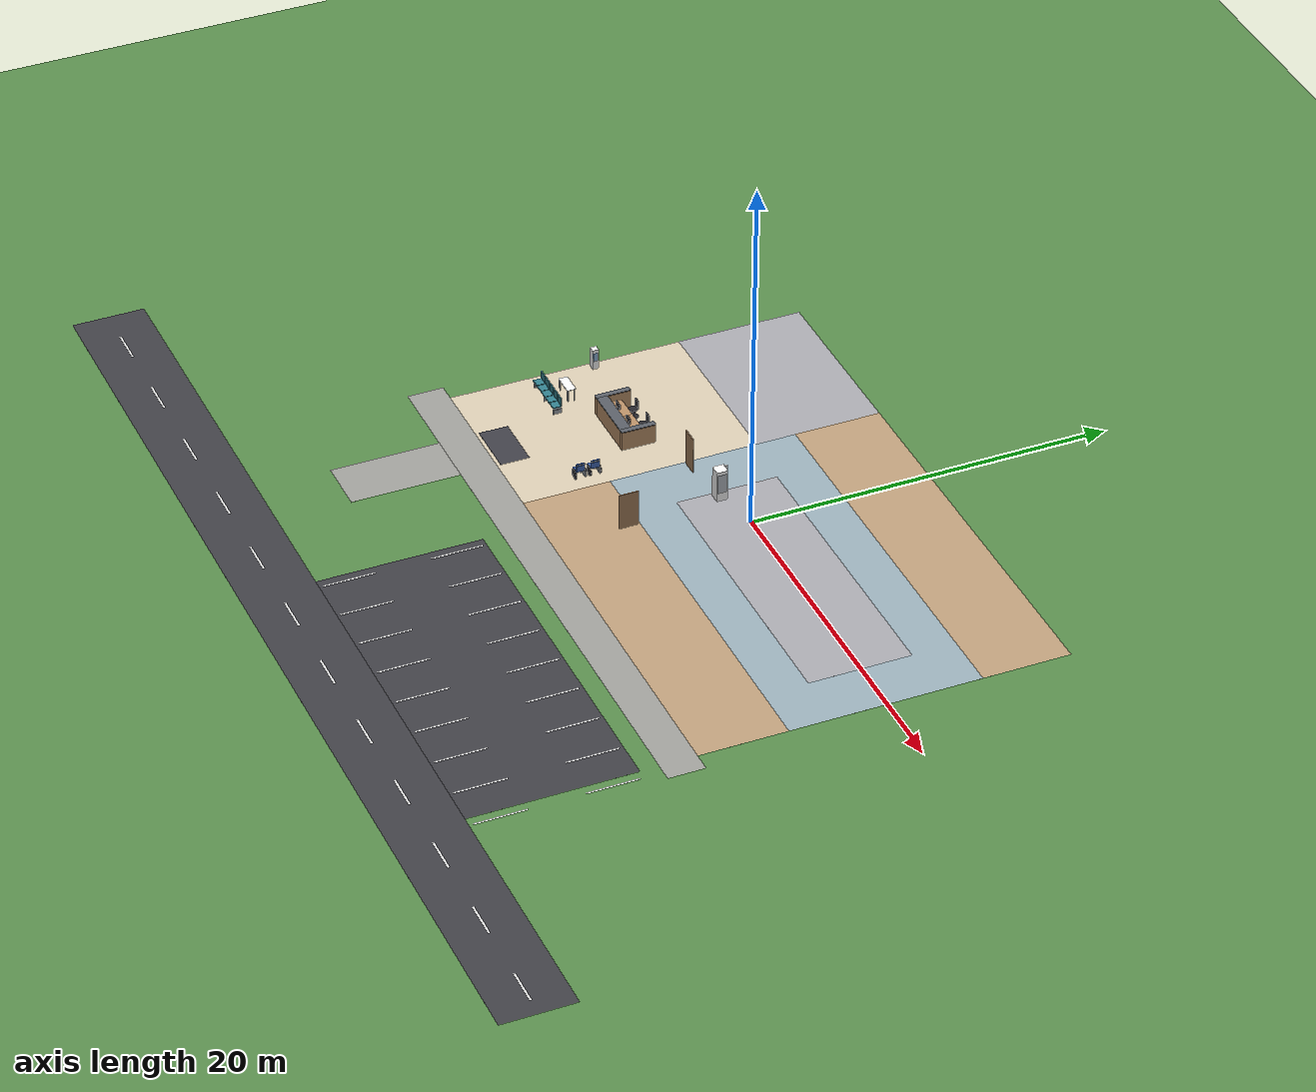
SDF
<sdf version="1.6">
 <world name="hospital">
  <include><uri>model://sun</uri></include>
  <model name="ground_plane">
   <static>true</static>
   <link name="link">
    <collision name="collision">
     <geometry><plane><normal>0 0 1</normal><size>100 100</size></plane></geometry>
     <surface>
      <contact><collide_bitmask>0xffff</collide_bitmask></contact>
      <friction><ode><mu>100</mu><mu2>50</mu2></ode></friction>
     </surface>
    </collision>
    <visual name="visual">
     <cast_shadows>false</cast_shadows>
     <geometry><plane><normal>0 0 1</normal><size>100 100</size></plane></geometry>
     <material>
      <ambient>0.35 0.55 0.3 1</ambient>
      <diffuse>0.35 0.55 0.3 1</diffuse>
      <specular>0 0 0 1</specular>
     </material>
    </visual>
   </link>
  </model>
  <model name="floor_finishes">
   <static>true</static>
   <link name="link">
    <visual name="v0">
     <pose>-11 -3.5 0.0025 0 0 0</pose>
     <geometry><box><size>10 13 0.001</size></box></geometry>
     <material>
      <ambient>0.85 0.8 0.7 1</ambient>
      <diffuse>0.85 0.8 0.7 1</diffuse>
      <specular>0.1 0.1 0.1 1</specular>
     </material>
    </visual>
    <visual name="v1">
     <pose>-11 6.5 0.0025 0 0 0</pose>
     <geometry><box><size>10 7 0.001</size></box></geometry>
     <material>
      <ambient>0.66 0.66 0.68 1</ambient>
      <diffuse>0.66 0.66 0.68 1</diffuse>
      <specular>0.1 0.1 0.1 1</specular>
     </material>
    </visual>
    <visual name="v2">
     <pose>5 0 0.0025 0 0 0</pose>
     <geometry><box><size>22 10.4 0.001</size></box></geometry>
     <material>
      <ambient>0.6 0.68 0.72 1</ambient>
      <diffuse>0.6 0.68 0.72 1</diffuse>
      <specular>0.1 0.1 0.1 1</specular>
     </material>
    </visual>
    <visual name="v3">
     <pose>5 7.6 0.0025 0 0 0</pose>
     <geometry><box><size>22 4.8 0.001</size></box></geometry>
     <material>
      <ambient>0.74 0.62 0.48 1</ambient>
      <diffuse>0.74 0.62 0.48 1</diffuse>
      <specular>0.1 0.1 0.1 1</specular>
     </material>
    </visual>
    <visual name="v4">
     <pose>5 -7.6 0.0025 0 0 0</pose>
     <geometry><box><size>22 4.8 0.001</size></box></geometry>
     <material>
      <ambient>0.74 0.62 0.48 1</ambient>
      <diffuse>0.74 0.62 0.48 1</diffuse>
      <specular>0.1 0.1 0.1 1</specular>
     </material>
    </visual>
    <visual name="v5">
     <pose>5 0 0.0045 0 0 0</pose>
     <geometry><box><size>16 5.6 0.001</size></box></geometry>
     <material>
      <ambient>0.66 0.66 0.68 1</ambient>
      <diffuse>0.66 0.66 0.68 1</diffuse>
      <specular>0.1 0.1 0.1 1</specular>
     </material>
    </visual>
    <visual name="v6">
     <pose>-11 -9 0.0045 0 0 0</pose>
     <geometry><box><size>3 1.6 0.001</size></box></geometry>
     <material>
      <ambient>0.25 0.25 0.28 1</ambient>
      <diffuse>0.25 0.25 0.28 1</diffuse>
      <specular>0.1 0.1 0.1 1</specular>
     </material>
    </visual>
    <visual name="v7">
     <pose>0 -11 0.0025 0 0 0</pose>
     <geometry><box><size>34 2 0.001</size></box></geometry>
     <material>
      <ambient>0.62 0.62 0.6 1</ambient>
      <diffuse>0.62 0.62 0.6 1</diffuse>
      <specular>0.1 0.1 0.1 1</specular>
     </material>
    </visual>
    <visual name="v8">
     <pose>-11 -15 0.0025 0 0 0</pose>
     <geometry><box><size>3 6 0.001</size></box></geometry>
     <material>
      <ambient>0.62 0.62 0.6 1</ambient>
      <diffuse>0.62 0.62 0.6 1</diffuse>
      <specular>0.1 0.1 0.1 1</specular>
     </material>
    </visual>
    <visual name="v9">
     <pose>6 -17.5 0.0025 0 0 0</pose>
     <geometry><box><size>20 9 0.001</size></box></geometry>
     <material>
      <ambient>0.25 0.25 0.27 1</ambient>
      <diffuse>0.25 0.25 0.27 1</diffuse>
      <specular>0.1 0.1 0.1 1</specular>
     </material>
    </visual>
    <visual name="v10">
     <pose>-3.5 -14.6 0.0045 0 0 0</pose>
     <geometry><box><size>0.1 2.8 0.001</size></box></geometry>
     <material>
      <ambient>0.95 0.95 0.95 1</ambient>
      <diffuse>0.95 0.95 0.95 1</diffuse>
      <specular>0.1 0.1 0.1 1</specular>
     </material>
    </visual>
    <visual name="v11">
     <pose>-3.5 -20.4 0.0045 0 0 0</pose>
     <geometry><box><size>0.1 2.8 0.001</size></box></geometry>
     <material>
      <ambient>0.95 0.95 0.95 1</ambient>
      <diffuse>0.95 0.95 0.95 1</diffuse>
      <specular>0.1 0.1 0.1 1</specular>
     </material>
    </visual>
    <visual name="v12">
     <pose>-1 -14.6 0.0045 0 0 0</pose>
     <geometry><box><size>0.1 2.8 0.001</size></box></geometry>
     <material>
      <ambient>0.95 0.95 0.95 1</ambient>
      <diffuse>0.95 0.95 0.95 1</diffuse>
      <specular>0.1 0.1 0.1 1</specular>
     </material>
    </visual>
    <visual name="v13">
     <pose>-1 -20.4 0.0045 0 0 0</pose>
     <geometry><box><size>0.1 2.8 0.001</size></box></geometry>
     <material>
      <ambient>0.95 0.95 0.95 1</ambient>
      <diffuse>0.95 0.95 0.95 1</diffuse>
      <specular>0.1 0.1 0.1 1</specular>
     </material>
    </visual>
    <visual name="v14">
     <pose>1.5 -14.6 0.0045 0 0 0</pose>
     <geometry><box><size>0.1 2.8 0.001</size></box></geometry>
     <material>
      <ambient>0.95 0.95 0.95 1</ambient>
      <diffuse>0.95 0.95 0.95 1</diffuse>
      <specular>0.1 0.1 0.1 1</specular>
     </material>
    </visual>
    <visual name="v15">
     <pose>1.5 -20.4 0.0045 0 0 0</pose>
     <geometry><box><size>0.1 2.8 0.001</size></box></geometry>
     <material>
      <ambient>0.95 0.95 0.95 1</ambient>
      <diffuse>0.95 0.95 0.95 1</diffuse>
      <specular>0.1 0.1 0.1 1</specular>
     </material>
    </visual>
    <visual name="v16">
     <pose>4 -14.6 0.0045 0 0 0</pose>
     <geometry><box><size>0.1 2.8 0.001</size></box></geometry>
     <material>
      <ambient>0.95 0.95 0.95 1</ambient>
      <diffuse>0.95 0.95 0.95 1</diffuse>
      <specular>0.1 0.1 0.1 1</specular>
     </material>
    </visual>
    <visual name="v17">
     <pose>4 -20.4 0.0045 0 0 0</pose>
     <geometry><box><size>0.1 2.8 0.001</size></box></geometry>
     <material>
      <ambient>0.95 0.95 0.95 1</ambient>
      <diffuse>0.95 0.95 0.95 1</diffuse>
      <specular>0.1 0.1 0.1 1</specular>
     </material>
    </visual>
    <visual name="v18">
     <pose>6.5 -14.6 0.0045 0 0 0</pose>
     <geometry><box><size>0.1 2.8 0.001</size></box></geometry>
     <material>
      <ambient>0.95 0.95 0.95 1</ambient>
      <diffuse>0.95 0.95 0.95 1</diffuse>
      <specular>0.1 0.1 0.1 1</specular>
     </material>
    </visual>
    <visual name="v19">
     <pose>6.5 -20.4 0.0045 0 0 0</pose>
     <geometry><box><size>0.1 2.8 0.001</size></box></geometry>
     <material>
      <ambient>0.95 0.95 0.95 1</ambient>
      <diffuse>0.95 0.95 0.95 1</diffuse>
      <specular>0.1 0.1 0.1 1</specular>
     </material>
    </visual>
    <visual name="v20">
     <pose>9 -14.6 0.0045 0 0 0</pose>
     <geometry><box><size>0.1 2.8 0.001</size></box></geometry>
     <material>
      <ambient>0.95 0.95 0.95 1</ambient>
      <diffuse>0.95 0.95 0.95 1</diffuse>
      <specular>0.1 0.1 0.1 1</specular>
     </material>
    </visual>
    <visual name="v21">
     <pose>9 -20.4 0.0045 0 0 0</pose>
     <geometry><box><size>0.1 2.8 0.001</size></box></geometry>
     <material>
      <ambient>0.95 0.95 0.95 1</ambient>
      <diffuse>0.95 0.95 0.95 1</diffuse>
      <specular>0.1 0.1 0.1 1</specular>
     </material>
    </visual>
    <visual name="v22">
     <pose>11.5 -14.6 0.0045 0 0 0</pose>
     <geometry><box><size>0.1 2.8 0.001</size></box></geometry>
     <material>
      <ambient>0.95 0.95 0.95 1</ambient>
      <diffuse>0.95 0.95 0.95 1</diffuse>
      <specular>0.1 0.1 0.1 1</specular>
     </material>
    </visual>
    <visual name="v23">
     <pose>11.5 -20.4 0.0045 0 0 0</pose>
     <geometry><box><size>0.1 2.8 0.001</size></box></geometry>
     <material>
      <ambient>0.95 0.95 0.95 1</ambient>
      <diffuse>0.95 0.95 0.95 1</diffuse>
      <specular>0.1 0.1 0.1 1</specular>
     </material>
    </visual>
    <visual name="v24">
     <pose>14 -14.6 0.0045 0 0 0</pose>
     <geometry><box><size>0.1 2.8 0.001</size></box></geometry>
     <material>
      <ambient>0.95 0.95 0.95 1</ambient>
      <diffuse>0.95 0.95 0.95 1</diffuse>
      <specular>0.1 0.1 0.1 1</specular>
     </material>
    </visual>
    <visual name="v25">
     <pose>14 -20.4 0.0045 0 0 0</pose>
     <geometry><box><size>0.1 2.8 0.001</size></box></geometry>
     <material>
      <ambient>0.95 0.95 0.95 1</ambient>
      <diffuse>0.95 0.95 0.95 1</diffuse>
      <specular>0.1 0.1 0.1 1</specular>
     </material>
    </visual>
    <visual name="v26">
     <pose>16.5 -14.6 0.0045 0 0 0</pose>
     <geometry><box><size>0.1 2.8 0.001</size></box></geometry>
     <material>
      <ambient>0.95 0.95 0.95 1</ambient>
      <diffuse>0.95 0.95 0.95 1</diffuse>
      <specular>0.1 0.1 0.1 1</specular>
     </material>
    </visual>
    <visual name="v27">
     <pose>16.5 -20.4 0.0045 0 0 0</pose>
     <geometry><box><size>0.1 2.8 0.001</size></box></geometry>
     <material>
      <ambient>0.95 0.95 0.95 1</ambient>
      <diffuse>0.95 0.95 0.95 1</diffuse>
      <specular>0.1 0.1 0.1 1</specular>
     </material>
    </visual>
    <visual name="v28">
     <pose>0 -24 0.0025 0 0 0</pose>
     <geometry><box><size>60 4 0.001</size></box></geometry>
     <material>
      <ambient>0.25 0.25 0.27 1</ambient>
      <diffuse>0.25 0.25 0.27 1</diffuse>
      <specular>0.1 0.1 0.1 1</specular>
     </material>
    </visual>
    <visual name="v29">
     <pose>-27 -24 0.0045 0 0 0</pose>
     <geometry><box><size>2 0.12 0.001</size></box></geometry>
     <material>
      <ambient>0.95 0.95 0.95 1</ambient>
      <diffuse>0.95 0.95 0.95 1</diffuse>
      <specular>0.1 0.1 0.1 1</specular>
     </material>
    </visual>
    <visual name="v30">
     <pose>-22 -24 0.0045 0 0 0</pose>
     <geometry><box><size>2 0.12 0.001</size></box></geometry>
     <material>
      <ambient>0.95 0.95 0.95 1</ambient>
      <diffuse>0.95 0.95 0.95 1</diffuse>
      <specular>0.1 0.1 0.1 1</specular>
     </material>
    </visual>
    <visual name="v31">
     <pose>-17 -24 0.0045 0 0 0</pose>
     <geometry><box><size>2 0.12 0.001</size></box></geometry>
     <material>
      <ambient>0.95 0.95 0.95 1</ambient>
      <diffuse>0.95 0.95 0.95 1</diffuse>
      <specular>0.1 0.1 0.1 1</specular>
     </material>
    </visual>
    <visual name="v32">
     <pose>-12 -24 0.0045 0 0 0</pose>
     <geometry><box><size>2 0.12 0.001</size></box></geometry>
     <material>
      <ambient>0.95 0.95 0.95 1</ambient>
      <diffuse>0.95 0.95 0.95 1</diffuse>
      <specular>0.1 0.1 0.1 1</specular>
     </material>
    </visual>
    <visual name="v33">
     <pose>-7 -24 0.0045 0 0 0</pose>
     <geometry><box><size>2 0.12 0.001</size></box></geometry>
     <material>
      <ambient>0.95 0.95 0.95 1</ambient>
      <diffuse>0.95 0.95 0.95 1</diffuse>
      <specular>0.1 0.1 0.1 1</specular>
     </material>
    </visual>
    <visual name="v34">
     <pose>-2 -24 0.0045 0 0 0</pose>
     <geometry><box><size>2 0.12 0.001</size></box></geometry>
     <material>
      <ambient>0.95 0.95 0.95 1</ambient>
      <diffuse>0.95 0.95 0.95 1</diffuse>
      <specular>0.1 0.1 0.1 1</specular>
     </material>
    </visual>
    <visual name="v35">
     <pose>3 -24 0.0045 0 0 0</pose>
     <geometry><box><size>2 0.12 0.001</size></box></geometry>
     <material>
      <ambient>0.95 0.95 0.95 1</ambient>
      <diffuse>0.95 0.95 0.95 1</diffuse>
      <specular>0.1 0.1 0.1 1</specular>
     </material>
    </visual>
    <visual name="v36">
     <pose>8 -24 0.0045 0 0 0</pose>
     <geometry><box><size>2 0.12 0.001</size></box></geometry>
     <material>
      <ambient>0.95 0.95 0.95 1</ambient>
      <diffuse>0.95 0.95 0.95 1</diffuse>
      <specular>0.1 0.1 0.1 1</specular>
     </material>
    </visual>
    <visual name="v37">
     <pose>13 -24 0.0045 0 0 0</pose>
     <geometry><box><size>2 0.12 0.001</size></box></geometry>
     <material>
      <ambient>0.95 0.95 0.95 1</ambient>
      <diffuse>0.95 0.95 0.95 1</diffuse>
      <specular>0.1 0.1 0.1 1</specular>
     </material>
    </visual>
    <visual name="v38">
     <pose>18 -24 0.0045 0 0 0</pose>
     <geometry><box><size>2 0.12 0.001</size></box></geometry>
     <material>
      <ambient>0.95 0.95 0.95 1</ambient>
      <diffuse>0.95 0.95 0.95 1</diffuse>
      <specular>0.1 0.1 0.1 1</specular>
     </material>
    </visual>
    <visual name="v39">
     <pose>23 -24 0.0045 0 0 0</pose>
     <geometry><box><size>2 0.12 0.001</size></box></geometry>
     <material>
      <ambient>0.95 0.95 0.95 1</ambient>
      <diffuse>0.95 0.95 0.95 1</diffuse>
      <specular>0.1 0.1 0.1 1</specular>
     </material>
    </visual>
    <visual name="v40">
     <pose>28 -24 0.0045 0 0 0</pose>
     <geometry><box><size>2 0.12 0.001</size></box></geometry>
     <material>
      <ambient>0.95 0.95 0.95 1</ambient>
      <diffuse>0.95 0.95 0.95 1</diffuse>
      <specular>0.1 0.1 0.1 1</specular>
     </material>
    </visual>
   </link>
  </model>
  <model name="door_S1">
   <static>true</static>
   <pose>-2.1 -5.83 0 0 0 0</pose>
   <link name="link">
    <collision name="c0">
     <pose>0 0 1.04 0 0 0</pose>
     <geometry><box><size>0.045 1.1 2.08</size></box></geometry>
    </collision>
    <visual name="v0">
     <pose>0 0 1.04 0 0 0</pose>
     <geometry><box><size>0.045 1.1 2.08</size></box></geometry>
     <material>
      <ambient>0.62 0.48 0.34 1</ambient>
      <diffuse>0.62 0.48 0.34 1</diffuse>
      <specular>0.1 0.1 0.1 1</specular>
     </material>
    </visual>
   </link>
  </model>
  <model name="reception_front">
   <static>true</static>
   <pose>-10 -3.3 0 0 0 0</pose>
   <link name="link">
    <collision name="c0">
     <pose>0 0 0.55 0 0 0</pose>
     <geometry><box><size>3 0.6 1.1</size></box></geometry>
    </collision>
    <visual name="v0">
     <pose>0 0 0.55 0 0 0</pose>
     <geometry><box><size>3 0.6 1.1</size></box></geometry>
     <material>
      <ambient>0.72 0.56 0.4 1</ambient>
      <diffuse>0.72 0.56 0.4 1</diffuse>
      <specular>0.1 0.1 0.1 1</specular>
     </material>
    </visual>
    <visual name="v1">
     <pose>0 0 1.12 0 0 0</pose>
     <geometry><box><size>3.02 0.62 0.04</size></box></geometry>
     <material>
      <ambient>0.35 0.37 0.4 1</ambient>
      <diffuse>0.35 0.37 0.4 1</diffuse>
      <specular>0.1 0.1 0.1 1</specular>
     </material>
    </visual>
   </link>
  </model>
  <model name="reception_left">
   <static>true</static>
   <pose>-11.65 -2.65 0 0 0 0</pose>
   <link name="link">
    <collision name="c0">
     <pose>0 0 0.55 0 0 0</pose>
     <geometry><box><size>0.3 1.9 1.1</size></box></geometry>
    </collision>
    <visual name="v0">
     <pose>0 0 0.55 0 0 0</pose>
     <geometry><box><size>0.3 1.9 1.1</size></box></geometry>
     <material>
      <ambient>0.72 0.56 0.4 1</ambient>
      <diffuse>0.72 0.56 0.4 1</diffuse>
      <specular>0.1 0.1 0.1 1</specular>
     </material>
    </visual>
    <visual name="v1">
     <pose>0 0 1.12 0 0 0</pose>
     <geometry><box><size>0.32 1.92 0.04</size></box></geometry>
     <material>
      <ambient>0.35 0.37 0.4 1</ambient>
      <diffuse>0.35 0.37 0.4 1</diffuse>
      <specular>0.1 0.1 0.1 1</specular>
     </material>
    </visual>
   </link>
  </model>
  <model name="reception_right">
   <static>true</static>
   <pose>-8.35 -2.65 0 0 0 0</pose>
   <link name="link">
    <collision name="c0">
     <pose>0 0 0.55 0 0 0</pose>
     <geometry><box><size>0.3 1.9 1.1</size></box></geometry>
    </collision>
    <visual name="v0">
     <pose>0 0 0.55 0 0 0</pose>
     <geometry><box><size>0.3 1.9 1.1</size></box></geometry>
     <material>
      <ambient>0.72 0.56 0.4 1</ambient>
      <diffuse>0.72 0.56 0.4 1</diffuse>
      <specular>0.1 0.1 0.1 1</specular>
     </material>
    </visual>
    <visual name="v1">
     <pose>0 0 1.12 0 0 0</pose>
     <geometry><box><size>0.32 1.92 0.04</size></box></geometry>
     <material>
      <ambient>0.35 0.37 0.4 1</ambient>
      <diffuse>0.35 0.37 0.4 1</diffuse>
      <specular>0.1 0.1 0.1 1</specular>
     </material>
    </visual>
   </link>
  </model>
  <model name="reception_desk_1">
   <static>true</static>
   <pose>-10.7 -2.6 0 0 0 3.1416</pose>
   <link name="link">
    <visual name="v0">
     <pose>0 0 0.735 0 0 0</pose>
     <geometry><box><size>1.4 0.7 0.03</size></box></geometry>
     <material>
      <ambient>0.72 0.56 0.4 1</ambient>
      <diffuse>0.72 0.56 0.4 1</diffuse>
      <specular>0.1 0.1 0.1 1</specular>
     </material>
    </visual>
    <collision name="c1">
     <pose>-0.67 0 0.36 0 0 0</pose>
     <geometry><box><size>0.04 0.66 0.72</size></box></geometry>
    </collision>
    <visual name="v1">
     <pose>-0.67 0 0.36 0 0 0</pose>
     <geometry><box><size>0.04 0.66 0.72</size></box></geometry>
     <material>
      <ambient>0.72 0.56 0.4 1</ambient>
      <diffuse>0.72 0.56 0.4 1</diffuse>
      <specular>0.1 0.1 0.1 1</specular>
     </material>
    </visual>
    <collision name="c2">
     <pose>0.67 0 0.36 0 0 0</pose>
     <geometry><box><size>0.04 0.66 0.72</size></box></geometry>
    </collision>
    <visual name="v2">
     <pose>0.67 0 0.36 0 0 0</pose>
     <geometry><box><size>0.04 0.66 0.72</size></box></geometry>
     <material>
      <ambient>0.72 0.56 0.4 1</ambient>
      <diffuse>0.72 0.56 0.4 1</diffuse>
      <specular>0.1 0.1 0.1 1</specular>
     </material>
    </visual>
    <collision name="c3">
     <pose>0 0.32 0.435 0 0 0</pose>
     <geometry><box><size>1.32 0.02 0.57</size></box></geometry>
    </collision>
    <visual name="v3">
     <pose>0 0.32 0.435 0 0 0</pose>
     <geometry><box><size>1.32 0.02 0.57</size></box></geometry>
     <material>
      <ambient>0.72 0.56 0.4 1</ambient>
      <diffuse>0.72 0.56 0.4 1</diffuse>
      <specular>0.1 0.1 0.1 1</specular>
     </material>
    </visual>
    <visual name="v4">
     <pose>0 0.15 0.76 0 0 0</pose>
     <geometry><box><size>0.2 0.15 0.02</size></box></geometry>
     <material>
      <ambient>0.15 0.15 0.17 1</ambient>
      <diffuse>0.15 0.15 0.17 1</diffuse>
      <specular>0.1 0.1 0.1 1</specular>
     </material>
    </visual>
    <visual name="v5">
     <pose>0 0.17 0.83 0 0 0</pose>
     <geometry><box><size>0.04 0.04 0.12</size></box></geometry>
     <material>
      <ambient>0.15 0.15 0.17 1</ambient>
      <diffuse>0.15 0.15 0.17 1</diffuse>
      <specular>0.1 0.1 0.1 1</specular>
     </material>
    </visual>
    <visual name="v6">
     <pose>0 0.15 1.015 0 0 0</pose>
     <geometry><box><size>0.55 0.03 0.33</size></box></geometry>
     <material>
      <ambient>0.15 0.15 0.17 1</ambient>
      <diffuse>0.15 0.15 0.17 1</diffuse>
      <specular>0.1 0.1 0.1 1</specular>
     </material>
    </visual>
   </link>
  </model>
  <model name="reception_desk_2">
   <static>true</static>
   <pose>-9.3 -2.6 0 0 0 3.1416</pose>
   <link name="link">
    <visual name="v0">
     <pose>0 0 0.735 0 0 0</pose>
     <geometry><box><size>1.4 0.7 0.03</size></box></geometry>
     <material>
      <ambient>0.72 0.56 0.4 1</ambient>
      <diffuse>0.72 0.56 0.4 1</diffuse>
      <specular>0.1 0.1 0.1 1</specular>
     </material>
    </visual>
    <collision name="c1">
     <pose>-0.67 0 0.36 0 0 0</pose>
     <geometry><box><size>0.04 0.66 0.72</size></box></geometry>
    </collision>
    <visual name="v1">
     <pose>-0.67 0 0.36 0 0 0</pose>
     <geometry><box><size>0.04 0.66 0.72</size></box></geometry>
     <material>
      <ambient>0.72 0.56 0.4 1</ambient>
      <diffuse>0.72 0.56 0.4 1</diffuse>
      <specular>0.1 0.1 0.1 1</specular>
     </material>
    </visual>
    <collision name="c2">
     <pose>0.67 0 0.36 0 0 0</pose>
     <geometry><box><size>0.04 0.66 0.72</size></box></geometry>
    </collision>
    <visual name="v2">
     <pose>0.67 0 0.36 0 0 0</pose>
     <geometry><box><size>0.04 0.66 0.72</size></box></geometry>
     <material>
      <ambient>0.72 0.56 0.4 1</ambient>
      <diffuse>0.72 0.56 0.4 1</diffuse>
      <specular>0.1 0.1 0.1 1</specular>
     </material>
    </visual>
    <collision name="c3">
     <pose>0 0.32 0.435 0 0 0</pose>
     <geometry><box><size>1.32 0.02 0.57</size></box></geometry>
    </collision>
    <visual name="v3">
     <pose>0 0.32 0.435 0 0 0</pose>
     <geometry><box><size>1.32 0.02 0.57</size></box></geometry>
     <material>
      <ambient>0.72 0.56 0.4 1</ambient>
      <diffuse>0.72 0.56 0.4 1</diffuse>
      <specular>0.1 0.1 0.1 1</specular>
     </material>
    </visual>
    <visual name="v4">
     <pose>0 0.15 0.76 0 0 0</pose>
     <geometry><box><size>0.2 0.15 0.02</size></box></geometry>
     <material>
      <ambient>0.15 0.15 0.17 1</ambient>
      <diffuse>0.15 0.15 0.17 1</diffuse>
      <specular>0.1 0.1 0.1 1</specular>
     </material>
    </visual>
    <visual name="v5">
     <pose>0 0.17 0.83 0 0 0</pose>
     <geometry><box><size>0.04 0.04 0.12</size></box></geometry>
     <material>
      <ambient>0.15 0.15 0.17 1</ambient>
      <diffuse>0.15 0.15 0.17 1</diffuse>
      <specular>0.1 0.1 0.1 1</specular>
     </material>
    </visual>
    <visual name="v6">
     <pose>0 0.15 1.015 0 0 0</pose>
     <geometry><box><size>0.55 0.03 0.33</size></box></geometry>
     <material>
      <ambient>0.15 0.15 0.17 1</ambient>
      <diffuse>0.15 0.15 0.17 1</diffuse>
      <specular>0.1 0.1 0.1 1</specular>
     </material>
    </visual>
   </link>
  </model>
  <model name="reception_chair_1">
   <static>true</static>
   <pose>-10.7 -1.9 0 0 0 0</pose>
   <link name="link">
    <collision name="c0">
     <pose>0 0 0.025 0 0 0</pose>
     <geometry><cylinder><radius>0.3</radius><length>0.05</length></cylinder></geometry>
    </collision>
    <visual name="v0">
     <pose>0 0 0.025 0 0 0</pose>
     <geometry><cylinder><radius>0.3</radius><length>0.05</length></cylinder></geometry>
     <material>
      <ambient>0.15 0.15 0.17 1</ambient>
      <diffuse>0.15 0.15 0.17 1</diffuse>
      <specular>0.1 0.1 0.1 1</specular>
     </material>
    </visual>
    <collision name="c1">
     <pose>0 0 0.25 0 0 0</pose>
     <geometry><cylinder><radius>0.03</radius><length>0.4</length></cylinder></geometry>
    </collision>
    <visual name="v1">
     <pose>0 0 0.25 0 0 0</pose>
     <geometry><cylinder><radius>0.03</radius><length>0.4</length></cylinder></geometry>
     <material>
      <ambient>0.6 0.62 0.65 1</ambient>
      <diffuse>0.6 0.62 0.65 1</diffuse>
      <specular>0.1 0.1 0.1 1</specular>
     </material>
    </visual>
    <visual name="v2">
     <pose>0 0 0.49 0 0 0</pose>
     <geometry><cylinder><radius>0.25</radius><length>0.08</length></cylinder></geometry>
     <material>
      <ambient>0.15 0.15 0.17 1</ambient>
      <diffuse>0.15 0.15 0.17 1</diffuse>
      <specular>0.1 0.1 0.1 1</specular>
     </material>
    </visual>
    <visual name="v3">
     <pose>0 0.22 0.8 0 0 0</pose>
     <geometry><box><size>0.42 0.05 0.5</size></box></geometry>
     <material>
      <ambient>0.15 0.15 0.17 1</ambient>
      <diffuse>0.15 0.15 0.17 1</diffuse>
      <specular>0.1 0.1 0.1 1</specular>
     </material>
    </visual>
   </link>
  </model>
  <model name="reception_chair_2">
   <static>true</static>
   <pose>-9.3 -1.9 0 0 0 0</pose>
   <link name="link">
    <collision name="c0">
     <pose>0 0 0.025 0 0 0</pose>
     <geometry><cylinder><radius>0.3</radius><length>0.05</length></cylinder></geometry>
    </collision>
    <visual name="v0">
     <pose>0 0 0.025 0 0 0</pose>
     <geometry><cylinder><radius>0.3</radius><length>0.05</length></cylinder></geometry>
     <material>
      <ambient>0.15 0.15 0.17 1</ambient>
      <diffuse>0.15 0.15 0.17 1</diffuse>
      <specular>0.1 0.1 0.1 1</specular>
     </material>
    </visual>
    <collision name="c1">
     <pose>0 0 0.25 0 0 0</pose>
     <geometry><cylinder><radius>0.03</radius><length>0.4</length></cylinder></geometry>
    </collision>
    <visual name="v1">
     <pose>0 0 0.25 0 0 0</pose>
     <geometry><cylinder><radius>0.03</radius><length>0.4</length></cylinder></geometry>
     <material>
      <ambient>0.6 0.62 0.65 1</ambient>
      <diffuse>0.6 0.62 0.65 1</diffuse>
      <specular>0.1 0.1 0.1 1</specular>
     </material>
    </visual>
    <visual name="v2">
     <pose>0 0 0.49 0 0 0</pose>
     <geometry><cylinder><radius>0.25</radius><length>0.08</length></cylinder></geometry>
     <material>
      <ambient>0.15 0.15 0.17 1</ambient>
      <diffuse>0.15 0.15 0.17 1</diffuse>
      <specular>0.1 0.1 0.1 1</specular>
     </material>
    </visual>
    <visual name="v3">
     <pose>0 0.22 0.8 0 0 0</pose>
     <geometry><box><size>0.42 0.05 0.5</size></box></geometry>
     <material>
      <ambient>0.15 0.15 0.17 1</ambient>
      <diffuse>0.15 0.15 0.17 1</diffuse>
      <specular>0.1 0.1 0.1 1</specular>
     </material>
    </visual>
   </link>
  </model>
  <model name="waiting_seats_2">
   <static>true</static>
   <pose>-13.8 -5.4 0 0 0 0</pose>
   <link name="link">
    <collision name="c0">
     <pose>0 0 0.33 0 0 0</pose>
     <geometry><box><size>2.75 0.08 0.06</size></box></geometry>
    </collision>
    <visual name="v0">
     <pose>0 0 0.33 0 0 0</pose>
     <geometry><box><size>2.75 0.08 0.06</size></box></geometry>
     <material>
      <ambient>0.6 0.62 0.65 1</ambient>
      <diffuse>0.6 0.62 0.65 1</diffuse>
      <specular>0.1 0.1 0.1 1</specular>
     </material>
    </visual>
    <collision name="c1">
     <pose>-1.275 0 0.15 0 0 0</pose>
     <geometry><box><size>0.06 0.45 0.3</size></box></geometry>
    </collision>
    <visual name="v1">
     <pose>-1.275 0 0.15 0 0 0</pose>
     <geometry><box><size>0.06 0.45 0.3</size></box></geometry>
     <material>
      <ambient>0.6 0.62 0.65 1</ambient>
      <diffuse>0.6 0.62 0.65 1</diffuse>
      <specular>0.1 0.1 0.1 1</specular>
     </material>
    </visual>
    <collision name="c2">
     <pose>0 0 0.15 0 0 0</pose>
     <geometry><box><size>0.06 0.45 0.3</size></box></geometry>
    </collision>
    <visual name="v2">
     <pose>0 0 0.15 0 0 0</pose>
     <geometry><box><size>0.06 0.45 0.3</size></box></geometry>
     <material>
      <ambient>0.6 0.62 0.65 1</ambient>
      <diffuse>0.6 0.62 0.65 1</diffuse>
      <specular>0.1 0.1 0.1 1</specular>
     </material>
    </visual>
    <collision name="c3">
     <pose>1.275 0 0.15 0 0 0</pose>
     <geometry><box><size>0.06 0.45 0.3</size></box></geometry>
    </collision>
    <visual name="v3">
     <pose>1.275 0 0.15 0 0 0</pose>
     <geometry><box><size>0.06 0.45 0.3</size></box></geometry>
     <material>
      <ambient>0.6 0.62 0.65 1</ambient>
      <diffuse>0.6 0.62 0.65 1</diffuse>
      <specular>0.1 0.1 0.1 1</specular>
     </material>
    </visual>
    <visual name="v4">
     <pose>-1.1 -0.02 0.435 0 0 0</pose>
     <geometry><box><size>0.5 0.48 0.07</size></box></geometry>
     <material>
      <ambient>0.2 0.5 0.55 1</ambient>
      <diffuse>0.2 0.5 0.55 1</diffuse>
      <specular>0.1 0.1 0.1 1</specular>
     </material>
    </visual>
    <visual name="v5">
     <pose>-1.1 0.22 0.695 0 0 0</pose>
     <geometry><box><size>0.5 0.05 0.45</size></box></geometry>
     <material>
      <ambient>0.2 0.5 0.55 1</ambient>
      <diffuse>0.2 0.5 0.55 1</diffuse>
      <specular>0.1 0.1 0.1 1</specular>
     </material>
    </visual>
    <visual name="v6">
     <pose>-0.55 -0.02 0.435 0 0 0</pose>
     <geometry><box><size>0.5 0.48 0.07</size></box></geometry>
     <material>
      <ambient>0.2 0.5 0.55 1</ambient>
      <diffuse>0.2 0.5 0.55 1</diffuse>
      <specular>0.1 0.1 0.1 1</specular>
     </material>
    </visual>
    <visual name="v7">
     <pose>-0.55 0.22 0.695 0 0 0</pose>
     <geometry><box><size>0.5 0.05 0.45</size></box></geometry>
     <material>
      <ambient>0.2 0.5 0.55 1</ambient>
      <diffuse>0.2 0.5 0.55 1</diffuse>
      <specular>0.1 0.1 0.1 1</specular>
     </material>
    </visual>
    <visual name="v8">
     <pose>0 -0.02 0.435 0 0 0</pose>
     <geometry><box><size>0.5 0.48 0.07</size></box></geometry>
     <material>
      <ambient>0.2 0.5 0.55 1</ambient>
      <diffuse>0.2 0.5 0.55 1</diffuse>
      <specular>0.1 0.1 0.1 1</specular>
     </material>
    </visual>
    <visual name="v9">
     <pose>0 0.22 0.695 0 0 0</pose>
     <geometry><box><size>0.5 0.05 0.45</size></box></geometry>
     <material>
      <ambient>0.2 0.5 0.55 1</ambient>
      <diffuse>0.2 0.5 0.55 1</diffuse>
      <specular>0.1 0.1 0.1 1</specular>
     </material>
    </visual>
    <visual name="v10">
     <pose>0.55 -0.02 0.435 0 0 0</pose>
     <geometry><box><size>0.5 0.48 0.07</size></box></geometry>
     <material>
      <ambient>0.2 0.5 0.55 1</ambient>
      <diffuse>0.2 0.5 0.55 1</diffuse>
      <specular>0.1 0.1 0.1 1</specular>
     </material>
    </visual>
    <visual name="v11">
     <pose>0.55 0.22 0.695 0 0 0</pose>
     <geometry><box><size>0.5 0.05 0.45</size></box></geometry>
     <material>
      <ambient>0.2 0.5 0.55 1</ambient>
      <diffuse>0.2 0.5 0.55 1</diffuse>
      <specular>0.1 0.1 0.1 1</specular>
     </material>
    </visual>
    <visual name="v12">
     <pose>1.1 -0.02 0.435 0 0 0</pose>
     <geometry><box><size>0.5 0.48 0.07</size></box></geometry>
     <material>
      <ambient>0.2 0.5 0.55 1</ambient>
      <diffuse>0.2 0.5 0.55 1</diffuse>
      <specular>0.1 0.1 0.1 1</specular>
     </material>
    </visual>
    <visual name="v13">
     <pose>1.1 0.22 0.695 0 0 0</pose>
     <geometry><box><size>0.5 0.05 0.45</size></box></geometry>
     <material>
      <ambient>0.2 0.5 0.55 1</ambient>
      <diffuse>0.2 0.5 0.55 1</diffuse>
      <specular>0.1 0.1 0.1 1</specular>
     </material>
    </visual>
   </link>
  </model>
  <model name="waiting_coffee_table">
   <static>true</static>
   <pose>-13.8 -4.3 0 0 0 0</pose>
   <link name="link">
    <visual name="v0">
     <pose>0 0 0.74 0 0 0</pose>
     <geometry><box><size>1.2 0.5 0.04</size></box></geometry>
     <material>
      <ambient>0.97 0.97 0.97 1</ambient>
      <diffuse>0.97 0.97 0.97 1</diffuse>
      <specular>0.1 0.1 0.1 1</specular>
     </material>
    </visual>
    <collision name="c1">
     <pose>-0.54 -0.19 0.36 0 0 0</pose>
     <geometry><box><size>0.05 0.05 0.72</size></box></geometry>
    </collision>
    <visual name="v1">
     <pose>-0.54 -0.19 0.36 0 0 0</pose>
     <geometry><box><size>0.05 0.05 0.72</size></box></geometry>
     <material>
      <ambient>0.6 0.62 0.65 1</ambient>
      <diffuse>0.6 0.62 0.65 1</diffuse>
      <specular>0.1 0.1 0.1 1</specular>
     </material>
    </visual>
    <collision name="c2">
     <pose>-0.54 0.19 0.36 0 0 0</pose>
     <geometry><box><size>0.05 0.05 0.72</size></box></geometry>
    </collision>
    <visual name="v2">
     <pose>-0.54 0.19 0.36 0 0 0</pose>
     <geometry><box><size>0.05 0.05 0.72</size></box></geometry>
     <material>
      <ambient>0.6 0.62 0.65 1</ambient>
      <diffuse>0.6 0.62 0.65 1</diffuse>
      <specular>0.1 0.1 0.1 1</specular>
     </material>
    </visual>
    <collision name="c3">
     <pose>0.54 -0.19 0.36 0 0 0</pose>
     <geometry><box><size>0.05 0.05 0.72</size></box></geometry>
    </collision>
    <visual name="v3">
     <pose>0.54 -0.19 0.36 0 0 0</pose>
     <geometry><box><size>0.05 0.05 0.72</size></box></geometry>
     <material>
      <ambient>0.6 0.62 0.65 1</ambient>
      <diffuse>0.6 0.62 0.65 1</diffuse>
      <specular>0.1 0.1 0.1 1</specular>
     </material>
    </visual>
    <collision name="c4">
     <pose>0.54 0.19 0.36 0 0 0</pose>
     <geometry><box><size>0.05 0.05 0.72</size></box></geometry>
    </collision>
    <visual name="v4">
     <pose>0.54 0.19 0.36 0 0 0</pose>
     <geometry><box><size>0.05 0.05 0.72</size></box></geometry>
     <material>
      <ambient>0.6 0.62 0.65 1</ambient>
      <diffuse>0.6 0.62 0.65 1</diffuse>
      <specular>0.1 0.1 0.1 1</specular>
     </material>
    </visual>
   </link>
  </model>
  <model name="water_dispenser">
   <static>true</static>
   <pose>-15.6 -2 0 0 0 1.5708</pose>
   <link name="link">
    <collision name="c0">
     <pose>0 0 0.6 0 0 0</pose>
     <geometry><box><size>0.35 0.35 1.2</size></box></geometry>
    </collision>
    <visual name="v0">
     <pose>0 0 0.6 0 0 0</pose>
     <geometry><box><size>0.35 0.35 1.2</size></box></geometry>
     <material>
      <ambient>0.97 0.97 0.97 1</ambient>
      <diffuse>0.97 0.97 0.97 1</diffuse>
      <specular>0.1 0.1 0.1 1</specular>
     </material>
    </visual>
    <visual name="v1">
     <pose>0 -0.178 0.75 0 0 0</pose>
     <geometry><box><size>0.28 0.005 0.5</size></box></geometry>
     <material>
      <ambient>0.55 0.7 0.85 1</ambient>
      <diffuse>0.55 0.7 0.85 1</diffuse>
      <specular>0.1 0.1 0.1 1</specular>
     </material>
    </visual>
   </link>
  </model>
  <model name="wheelchair_lobby_1">
   <static>true</static>
   <pose>-7 -6.5 0 0 0 -1.5708</pose>
   <link name="link">
    <collision name="c0">
     <pose>-0.28 0.1 0.3 0 1.5708 0</pose>
     <geometry><cylinder><radius>0.3</radius><length>0.03</length></cylinder></geometry>
    </collision>
    <visual name="v0">
     <pose>-0.28 0.1 0.3 0 1.5708 0</pose>
     <geometry><cylinder><radius>0.3</radius><length>0.03</length></cylinder></geometry>
     <material>
      <ambient>0.15 0.15 0.17 1</ambient>
      <diffuse>0.15 0.15 0.17 1</diffuse>
      <specular>0.1 0.1 0.1 1</specular>
     </material>
    </visual>
    <collision name="c1">
     <pose>-0.224 -0.3 0.05 0 0 0</pose>
     <geometry><cylinder><radius>0.05</radius><length>0.1</length></cylinder></geometry>
    </collision>
    <visual name="v1">
     <pose>-0.224 -0.3 0.05 0 0 0</pose>
     <geometry><cylinder><radius>0.05</radius><length>0.1</length></cylinder></geometry>
     <material>
      <ambient>0.15 0.15 0.17 1</ambient>
      <diffuse>0.15 0.15 0.17 1</diffuse>
      <specular>0.1 0.1 0.1 1</specular>
     </material>
    </visual>
    <collision name="c2">
     <pose>0.28 0.1 0.3 0 1.5708 0</pose>
     <geometry><cylinder><radius>0.3</radius><length>0.03</length></cylinder></geometry>
    </collision>
    <visual name="v2">
     <pose>0.28 0.1 0.3 0 1.5708 0</pose>
     <geometry><cylinder><radius>0.3</radius><length>0.03</length></cylinder></geometry>
     <material>
      <ambient>0.15 0.15 0.17 1</ambient>
      <diffuse>0.15 0.15 0.17 1</diffuse>
      <specular>0.1 0.1 0.1 1</specular>
     </material>
    </visual>
    <collision name="c3">
     <pose>0.224 -0.3 0.05 0 0 0</pose>
     <geometry><cylinder><radius>0.05</radius><length>0.1</length></cylinder></geometry>
    </collision>
    <visual name="v3">
     <pose>0.224 -0.3 0.05 0 0 0</pose>
     <geometry><cylinder><radius>0.05</radius><length>0.1</length></cylinder></geometry>
     <material>
      <ambient>0.15 0.15 0.17 1</ambient>
      <diffuse>0.15 0.15 0.17 1</diffuse>
      <specular>0.1 0.1 0.1 1</specular>
     </material>
    </visual>
    <visual name="v4">
     <pose>0 0 0.48 0 0 0</pose>
     <geometry><box><size>0.48 0.45 0.06</size></box></geometry>
     <material>
      <ambient>0.25 0.4 0.7 1</ambient>
      <diffuse>0.25 0.4 0.7 1</diffuse>
      <specular>0.1 0.1 0.1 1</specular>
     </material>
    </visual>
    <visual name="v5">
     <pose>0 0.22 0.735 0 0 0</pose>
     <geometry><box><size>0.48 0.04 0.45</size></box></geometry>
     <material>
      <ambient>0.25 0.4 0.7 1</ambient>
      <diffuse>0.25 0.4 0.7 1</diffuse>
      <specular>0.1 0.1 0.1 1</specular>
     </material>
    </visual>
    <visual name="v6">
     <pose>0 0.3 0.915 0 0 0</pose>
     <geometry><box><size>0.48 0.03 0.03</size></box></geometry>
     <material>
      <ambient>0.6 0.62 0.65 1</ambient>
      <diffuse>0.6 0.62 0.65 1</diffuse>
      <specular>0.1 0.1 0.1 1</specular>
     </material>
    </visual>
    <collision name="c7">
     <pose>-0.25 0 0.265 0 0 0</pose>
     <geometry><box><size>0.03 0.45 0.37</size></box></geometry>
    </collision>
    <visual name="v7">
     <pose>-0.25 0 0.265 0 0 0</pose>
     <geometry><box><size>0.03 0.45 0.37</size></box></geometry>
     <material>
      <ambient>0.6 0.62 0.65 1</ambient>
      <diffuse>0.6 0.62 0.65 1</diffuse>
      <specular>0.1 0.1 0.1 1</specular>
     </material>
    </visual>
    <collision name="c8">
     <pose>0.25 0 0.265 0 0 0</pose>
     <geometry><box><size>0.03 0.45 0.37</size></box></geometry>
    </collision>
    <visual name="v8">
     <pose>0.25 0 0.265 0 0 0</pose>
     <geometry><box><size>0.03 0.45 0.37</size></box></geometry>
     <material>
      <ambient>0.6 0.62 0.65 1</ambient>
      <diffuse>0.6 0.62 0.65 1</diffuse>
      <specular>0.1 0.1 0.1 1</specular>
     </material>
    </visual>
    <collision name="c9">
     <pose>0 -0.38 0.09 0 0 0</pose>
     <geometry><box><size>0.4 0.15 0.02</size></box></geometry>
    </collision>
    <visual name="v9">
     <pose>0 -0.38 0.09 0 0 0</pose>
     <geometry><box><size>0.4 0.15 0.02</size></box></geometry>
     <material>
      <ambient>0.6 0.62 0.65 1</ambient>
      <diffuse>0.6 0.62 0.65 1</diffuse>
      <specular>0.1 0.1 0.1 1</specular>
     </material>
    </visual>
   </link>
  </model>
  <model name="wheelchair_lobby_2">
   <static>true</static>
   <pose>-7 -5.7 0 0 0 -1.5708</pose>
   <link name="link">
    <collision name="c0">
     <pose>-0.28 0.1 0.3 0 1.5708 0</pose>
     <geometry><cylinder><radius>0.3</radius><length>0.03</length></cylinder></geometry>
    </collision>
    <visual name="v0">
     <pose>-0.28 0.1 0.3 0 1.5708 0</pose>
     <geometry><cylinder><radius>0.3</radius><length>0.03</length></cylinder></geometry>
     <material>
      <ambient>0.15 0.15 0.17 1</ambient>
      <diffuse>0.15 0.15 0.17 1</diffuse>
      <specular>0.1 0.1 0.1 1</specular>
     </material>
    </visual>
    <collision name="c1">
     <pose>-0.224 -0.3 0.05 0 0 0</pose>
     <geometry><cylinder><radius>0.05</radius><length>0.1</length></cylinder></geometry>
    </collision>
    <visual name="v1">
     <pose>-0.224 -0.3 0.05 0 0 0</pose>
     <geometry><cylinder><radius>0.05</radius><length>0.1</length></cylinder></geometry>
     <material>
      <ambient>0.15 0.15 0.17 1</ambient>
      <diffuse>0.15 0.15 0.17 1</diffuse>
      <specular>0.1 0.1 0.1 1</specular>
     </material>
    </visual>
    <collision name="c2">
     <pose>0.28 0.1 0.3 0 1.5708 0</pose>
     <geometry><cylinder><radius>0.3</radius><length>0.03</length></cylinder></geometry>
    </collision>
    <visual name="v2">
     <pose>0.28 0.1 0.3 0 1.5708 0</pose>
     <geometry><cylinder><radius>0.3</radius><length>0.03</length></cylinder></geometry>
     <material>
      <ambient>0.15 0.15 0.17 1</ambient>
      <diffuse>0.15 0.15 0.17 1</diffuse>
      <specular>0.1 0.1 0.1 1</specular>
     </material>
    </visual>
    <collision name="c3">
     <pose>0.224 -0.3 0.05 0 0 0</pose>
     <geometry><cylinder><radius>0.05</radius><length>0.1</length></cylinder></geometry>
    </collision>
    <visual name="v3">
     <pose>0.224 -0.3 0.05 0 0 0</pose>
     <geometry><cylinder><radius>0.05</radius><length>0.1</length></cylinder></geometry>
     <material>
      <ambient>0.15 0.15 0.17 1</ambient>
      <diffuse>0.15 0.15 0.17 1</diffuse>
      <specular>0.1 0.1 0.1 1</specular>
     </material>
    </visual>
    <visual name="v4">
     <pose>0 0 0.48 0 0 0</pose>
     <geometry><box><size>0.48 0.45 0.06</size></box></geometry>
     <material>
      <ambient>0.25 0.4 0.7 1</ambient>
      <diffuse>0.25 0.4 0.7 1</diffuse>
      <specular>0.1 0.1 0.1 1</specular>
     </material>
    </visual>
    <visual name="v5">
     <pose>0 0.22 0.735 0 0 0</pose>
     <geometry><box><size>0.48 0.04 0.45</size></box></geometry>
     <material>
      <ambient>0.25 0.4 0.7 1</ambient>
      <diffuse>0.25 0.4 0.7 1</diffuse>
      <specular>0.1 0.1 0.1 1</specular>
     </material>
    </visual>
    <visual name="v6">
     <pose>0 0.3 0.915 0 0 0</pose>
     <geometry><box><size>0.48 0.03 0.03</size></box></geometry>
     <material>
      <ambient>0.6 0.62 0.65 1</ambient>
      <diffuse>0.6 0.62 0.65 1</diffuse>
      <specular>0.1 0.1 0.1 1</specular>
     </material>
    </visual>
    <collision name="c7">
     <pose>-0.25 0 0.265 0 0 0</pose>
     <geometry><box><size>0.03 0.45 0.37</size></box></geometry>
    </collision>
    <visual name="v7">
     <pose>-0.25 0 0.265 0 0 0</pose>
     <geometry><box><size>0.03 0.45 0.37</size></box></geometry>
     <material>
      <ambient>0.6 0.62 0.65 1</ambient>
      <diffuse>0.6 0.62 0.65 1</diffuse>
      <specular>0.1 0.1 0.1 1</specular>
     </material>
    </visual>
    <collision name="c8">
     <pose>0.25 0 0.265 0 0 0</pose>
     <geometry><box><size>0.03 0.45 0.37</size></box></geometry>
    </collision>
    <visual name="v8">
     <pose>0.25 0 0.265 0 0 0</pose>
     <geometry><box><size>0.03 0.45 0.37</size></box></geometry>
     <material>
      <ambient>0.6 0.62 0.65 1</ambient>
      <diffuse>0.6 0.62 0.65 1</diffuse>
      <specular>0.1 0.1 0.1 1</specular>
     </material>
    </visual>
    <collision name="c9">
     <pose>0 -0.38 0.09 0 0 0</pose>
     <geometry><box><size>0.4 0.15 0.02</size></box></geometry>
    </collision>
    <visual name="v9">
     <pose>0 -0.38 0.09 0 0 0</pose>
     <geometry><box><size>0.4 0.15 0.02</size></box></geometry>
     <material>
      <ambient>0.6 0.62 0.65 1</ambient>
      <diffuse>0.6 0.62 0.65 1</diffuse>
      <specular>0.1 0.1 0.1 1</specular>
     </material>
    </visual>
   </link>
  </model>
  <model name="ward_door_right">
   <static>true</static>
   <pose>-5.445 -1 0 0 0 0</pose>
   <link name="link">
    <collision name="c0">
     <pose>0 0 1.04 0 0 0</pose>
     <geometry><box><size>0.95 0.045 2.08</size></box></geometry>
    </collision>
    <visual name="v0">
     <pose>0 0 1.04 0 0 0</pose>
     <geometry><box><size>0.95 0.045 2.08</size></box></geometry>
     <material>
      <ambient>0.62 0.48 0.34 1</ambient>
      <diffuse>0.62 0.48 0.34 1</diffuse>
      <specular>0.1 0.1 0.1 1</specular>
     </material>
    </visual>
   </link>
  </model>
  <model name="med_fridge">
   <static>true</static>
   <pose>-2.55 -0.6 0 0 0 1.5708</pose>
   <link name="link">
    <collision name="c0">
     <pose>0 0 0.9 0 0 0</pose>
     <geometry><box><size>0.6 0.6 1.8</size></box></geometry>
    </collision>
    <visual name="v0">
     <pose>0 0 0.9 0 0 0</pose>
     <geometry><box><size>0.6 0.6 1.8</size></box></geometry>
     <material>
      <ambient>0.97 0.97 0.97 1</ambient>
      <diffuse>0.97 0.97 0.97 1</diffuse>
      <specular>0.1 0.1 0.1 1</specular>
     </material>
    </visual>
    <visual name="v1">
     <pose>0 -0.303 1.05 0 0 0</pose>
     <geometry><box><size>0.48 0.005 1.1</size></box></geometry>
     <material>
      <ambient>0.7 0.72 0.75 1</ambient>
      <diffuse>0.7 0.72 0.75 1</diffuse>
      <specular>0.1 0.1 0.1 1</specular>
     </material>
    </visual>
   </link>
  </model>
  <model name="hand_sanitizer_3">
   <static>true</static>
   <pose>-3.12 0 0 0 0 1.5708</pose>
   <link name="link">
    <visual name="v0">
     <pose>0 0 1.325 0 0 0</pose>
     <geometry><box><size>0.12 0.08 0.25</size></box></geometry>
     <material>
      <ambient>0.97 0.97 0.97 1</ambient>
      <diffuse>0.97 0.97 0.97 1</diffuse>
      <specular>0.1 0.1 0.1 1</specular>
     </material>
    </visual>
   </link>
  </model>
 </world>
</sdf>
